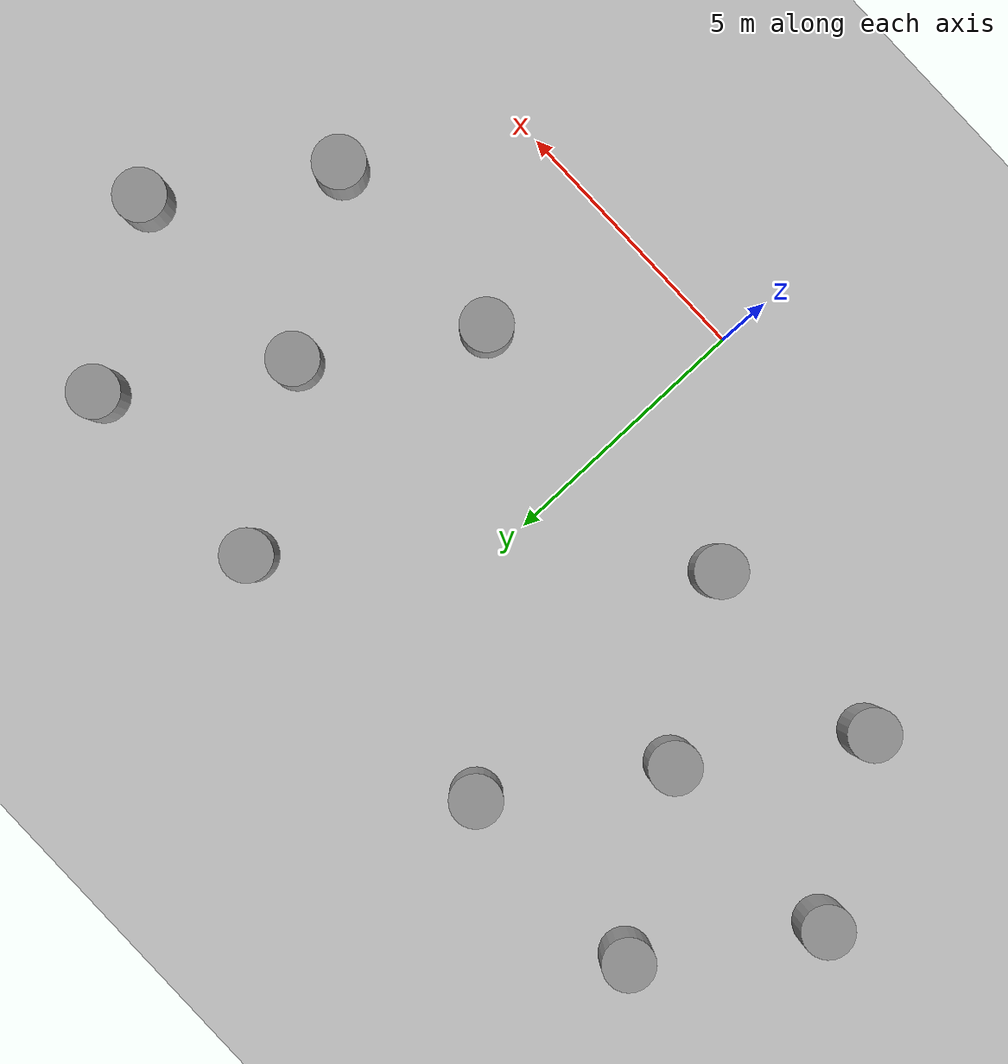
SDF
<sdf version="1.7">
 <world name="default">
  <light name="sun" type="directional">
   <pose>0 0 10 0 -0 0</pose>
   <diffuse>0.8 0.8 0.8 1</diffuse>
   <specular>0.2 0.2 0.2 1</specular>
   <attenuation>
    <range>1000</range>
    <constant>0.9</constant>
    <linear>0.01</linear>
    <quadratic>0.001</quadratic>
   </attenuation>
   <direction>-0.5 0.1 -0.9</direction>
   <spot><inner_angle>0</inner_angle><outer_angle>0</outer_angle><falloff>0</falloff></spot>
  </light>
  <model name="ground_plane">
   <static>1</static>
   <link name="link">
    <collision name="collision">
     <geometry><plane><normal>0 0 1</normal><size>100 100</size></plane></geometry>
     <surface><friction><ode><mu>100</mu><mu2>50</mu2></ode></friction></surface>
    </collision>
    <visual name="visual">
     <cast_shadows>0</cast_shadows>
     <geometry><plane><normal>0 0 1</normal><size>100 100</size></plane></geometry>
     <material>
      <script><uri>file://media/materials/scripts/gazebo.material</uri><name>Gazebo/Grey</name></script>
     </material>
    </visual>
   </link>
  </model>
  <gravity>0 0 -9.8</gravity>
  <magnetic_field>6e-06 2.3e-05 -4.2e-05</magnetic_field>
  <atmosphere type="adiabatic"/>
  <physics type="ode">
   <max_step_size>0.01</max_step_size>
   <real_time_factor>1</real_time_factor>
   <real_time_update_rate>0</real_time_update_rate>
  </physics>
  <scene><ambient>0.4 0.4 0.4 1</ambient><background>0.7 0.7 0.7 1</background><shadows>1</shadows></scene>
  <spherical_coordinates>
   <surface_model>EARTH_WGS84</surface_model>
   <latitude_deg>0</latitude_deg>
   <longitude_deg>0</longitude_deg>
   <elevation>0</elevation>
   <heading_deg>0</heading_deg>
  </spherical_coordinates>
  <model name="unit_cylinder">
   <pose>3.07729 3.05513 0.499096 2.5e-05 6.4e-05 -0.414239</pose>
   <link name="link">
    <inertial>
     <mass>1</mass>
     <inertia><ixx>0.145833</ixx><ixy>0</ixy><ixz>0</ixz><iyy>0.145833</iyy><iyz>0</iyz><izz>0.125</izz></inertia>
    </inertial>
    <collision name="collision">
     <geometry><cylinder><radius>0.5</radius><length>1</length></cylinder></geometry>
    </collision>
    <visual name="visual">
     <geometry><cylinder><radius>0.5</radius><length>1</length></cylinder></geometry>
     <material>
      <script><name>Gazebo/Grey</name><uri>file://media/materials/scripts/gazebo.material</uri></script>
     </material>
    </visual>
   </link>
  </model>
  <model name="unit_cylinder_0">
   <pose>4.99984 6.00017 0.499096 4.9e-05 4.8e-05 0.010201</pose>
   <link name="link">
    <inertial>
     <mass>1</mass>
     <inertia><ixx>0.145833</ixx><ixy>0</ixy><ixz>0</ixz><iyy>0.145833</iyy><iyz>0</iyz><izz>0.125</izz></inertia>
    </inertial>
    <collision name="collision">
     <geometry><cylinder><radius>0.5</radius><length>1</length></cylinder></geometry>
    </collision>
    <visual name="visual">
     <geometry><cylinder><radius>0.5</radius><length>1</length></cylinder></geometry>
     <material>
      <script><name>Gazebo/Grey</name><uri>file://media/materials/scripts/gazebo.material</uri></script>
     </material>
    </visual>
   </link>
  </model>
  <model name="unit_cylinder_2">
   <pose>9.00001 6 0.499789 0.000422 0.000422 -4.6e-05</pose>
   <link name="link">
    <inertial>
     <mass>1</mass>
     <inertia><ixx>0.145833</ixx><ixy>0</ixy><ixz>0</ixz><iyy>0.145833</iyy><iyz>0</iyz><izz>0.125</izz></inertia>
    </inertial>
    <collision name="collision">
     <geometry><cylinder><radius>0.5</radius><length>1</length></cylinder></geometry>
    </collision>
    <visual name="visual">
     <geometry><cylinder><radius>0.5</radius><length>1</length></cylinder></geometry>
     <material>
      <script><name>Gazebo/Grey</name><uri>file://media/materials/scripts/gazebo.material</uri></script>
     </material>
    </visual>
   </link>
  </model>
  <model name="unit_cylinder_1">
   <pose>2.99988 9.00012 0.499789 0.000435 0.000409 0.030047</pose>
   <link name="link">
    <inertial>
     <mass>1</mass>
     <inertia><ixx>0.145833</ixx><ixy>0</ixy><ixz>0</ixz><iyy>0.145833</iyy><iyz>0</iyz><izz>0.125</izz></inertia>
    </inertial>
    <collision name="collision">
     <geometry><cylinder><radius>0.5</radius><length>1</length></cylinder></geometry>
    </collision>
    <visual name="visual">
     <geometry><cylinder><radius>0.5</radius><length>1</length></cylinder></geometry>
     <material>
      <script><name>Gazebo/Grey</name><uri>file://media/materials/scripts/gazebo.material</uri></script>
     </material>
    </visual>
   </link>
  </model>
  <model name="unit_cylinder_3">
   <pose>7.00008 8.99992 0.499789 0.000422 0.000422 -3.6e-05</pose>
   <link name="link">
    <inertial>
     <mass>1</mass>
     <inertia><ixx>0.145833</ixx><ixy>0</ixy><ixz>0</ixz><iyy>0.145833</iyy><iyz>0</iyz><izz>0.125</izz></inertia>
    </inertial>
    <collision name="collision">
     <geometry><cylinder><radius>0.5</radius><length>1</length></cylinder></geometry>
    </collision>
    <visual name="visual">
     <geometry><cylinder><radius>0.5</radius><length>1</length></cylinder></geometry>
     <material>
      <script><name>Gazebo/Grey</name><uri>file://media/materials/scripts/gazebo.material</uri></script>
     </material>
    </visual>
   </link>
  </model>
  <model name="unit_cylinder_4">
   <pose>6.99972 3.00028 0.499824 -0.000249 -0.000249 -3.5e-05</pose>
   <link name="link">
    <inertial>
     <mass>1</mass>
     <inertia><ixx>0.145833</ixx><ixy>0</ixy><ixz>0</ixz><iyy>0.145833</iyy><iyz>0</iyz><izz>0.125</izz></inertia>
    </inertial>
    <collision name="collision">
     <geometry><cylinder><radius>0.5</radius><length>1</length></cylinder></geometry>
    </collision>
    <visual name="visual">
     <geometry><cylinder><radius>0.5</radius><length>1</length></cylinder></geometry>
     <material>
      <script><name>Gazebo/Grey</name><uri>file://media/materials/scripts/gazebo.material</uri></script>
     </material>
    </visual>
   </link>
  </model>
  <model name="unit_cylinder_5">
   <pose>-6.99988 2.99988 0.499789 0.000422 0.000422 -2.6e-05</pose>
   <link name="link">
    <inertial>
     <mass>1</mass>
     <inertia><ixx>0.145833</ixx><ixy>0</ixy><ixz>0</ixz><iyy>0.145833</iyy><iyz>0</iyz><izz>0.125</izz></inertia>
    </inertial>
    <collision name="collision">
     <geometry><cylinder><radius>0.5</radius><length>1</length></cylinder></geometry>
    </collision>
    <visual name="visual">
     <geometry><cylinder><radius>0.5</radius><length>1</length></cylinder></geometry>
     <material>
      <script><name>Gazebo/Grey</name><uri>file://media/materials/scripts/gazebo.material</uri></script>
     </material>
    </visual>
   </link>
  </model>
  <model name="unit_cylinder_6">
   <pose>-6.99983 8.99983 0.499789 0.000422 0.000422 -2.5e-05</pose>
   <link name="link">
    <inertial>
     <mass>1</mass>
     <inertia><ixx>0.145833</ixx><ixy>0</ixy><ixz>0</ixz><iyy>0.145833</iyy><iyz>0</iyz><izz>0.125</izz></inertia>
    </inertial>
    <collision name="collision">
     <geometry><cylinder><radius>0.5</radius><length>1</length></cylinder></geometry>
    </collision>
    <visual name="visual">
     <geometry><cylinder><radius>0.5</radius><length>1</length></cylinder></geometry>
     <material>
      <script><name>Gazebo/Grey</name><uri>file://media/materials/scripts/gazebo.material</uri></script>
     </material>
    </visual>
   </link>
  </model>
  <model name="unit_cylinder_7">
   <pose>-9.00039 6.00039 0.499824 -0.000249 -0.000249 -2.5e-05</pose>
   <link name="link">
    <inertial>
     <mass>1</mass>
     <inertia><ixx>0.145833</ixx><ixy>0</ixy><ixz>0</ixz><iyy>0.145833</iyy><iyz>0</iyz><izz>0.125</izz></inertia>
    </inertial>
    <collision name="collision">
     <geometry><cylinder><radius>0.5</radius><length>1</length></cylinder></geometry>
    </collision>
    <visual name="visual">
     <geometry><cylinder><radius>0.5</radius><length>1</length></cylinder></geometry>
     <material>
      <script><name>Gazebo/Grey</name><uri>file://media/materials/scripts/gazebo.material</uri></script>
     </material>
    </visual>
   </link>
  </model>
  <model name="unit_cylinder_8">
   <pose>-3.00002 9.00003 0.499096 4.8e-05 4.8e-05 -2.3e-05</pose>
   <link name="link">
    <inertial>
     <mass>1</mass>
     <inertia><ixx>0.145833</ixx><ixy>0</ixy><ixz>0</ixz><iyy>0.145833</iyy><iyz>0</iyz><izz>0.125</izz></inertia>
    </inertial>
    <collision name="collision">
     <geometry><cylinder><radius>0.5</radius><length>1</length></cylinder></geometry>
    </collision>
    <visual name="visual">
     <geometry><cylinder><radius>0.5</radius><length>1</length></cylinder></geometry>
     <material>
      <script><name>Gazebo/Grey</name><uri>file://media/materials/scripts/gazebo.material</uri></script>
     </material>
    </visual>
   </link>
  </model>
  <model name="unit_cylinder_9">
   <pose>-5.00006 6.00006 0.499789 0.000422 0.000422 -2.2e-05</pose>
   <link name="link">
    <inertial>
     <mass>1</mass>
     <inertia><ixx>0.145833</ixx><ixy>0</ixy><ixz>0</ixz><iyy>0.145833</iyy><iyz>0</iyz><izz>0.125</izz></inertia>
    </inertial>
    <collision name="collision">
     <geometry><cylinder><radius>0.5</radius><length>1</length></cylinder></geometry>
    </collision>
    <visual name="visual">
     <geometry><cylinder><radius>0.5</radius><length>1</length></cylinder></geometry>
     <material>
      <script><name>Gazebo/Grey</name><uri>file://media/materials/scripts/gazebo.material</uri></script>
     </material>
    </visual>
   </link>
  </model>
  <model name="unit_cylinder_10">
   <pose>-3.00022 3.00022 0.499824 -0.000249 -0.000249 -2e-05</pose>
   <link name="link">
    <inertial>
     <mass>1</mass>
     <inertia><ixx>0.145833</ixx><ixy>0</ixy><ixz>0</ixz><iyy>0.145833</iyy><iyz>0</iyz><izz>0.125</izz></inertia>
    </inertial>
    <collision name="collision">
     <geometry><cylinder><radius>0.5</radius><length>1</length></cylinder></geometry>
    </collision>
    <visual name="visual">
     <geometry><cylinder><radius>0.5</radius><length>1</length></cylinder></geometry>
     <material>
      <script><name>Gazebo/Grey</name><uri>file://media/materials/scripts/gazebo.material</uri></script>
     </material>
    </visual>
   </link>
  </model>
 </world>
</sdf>
